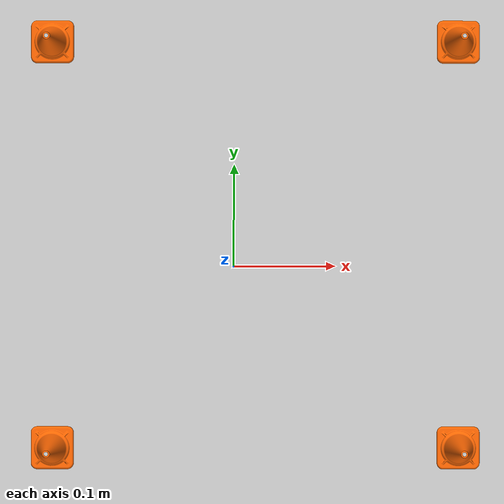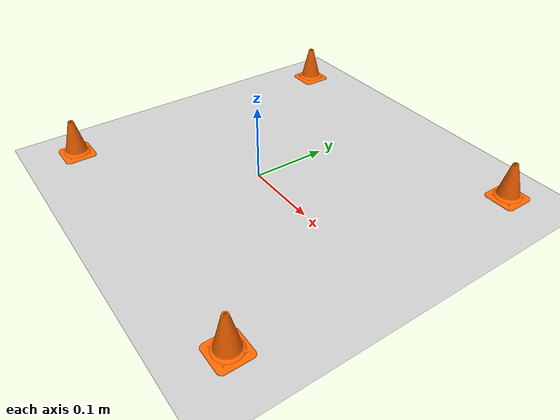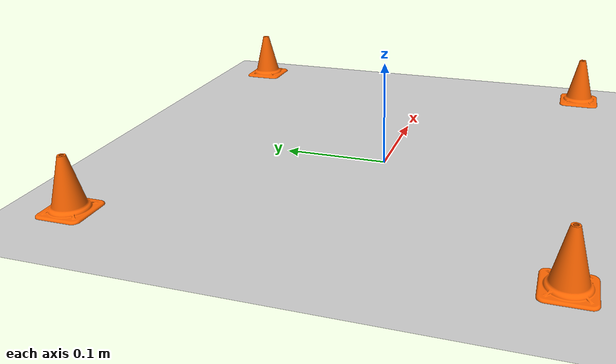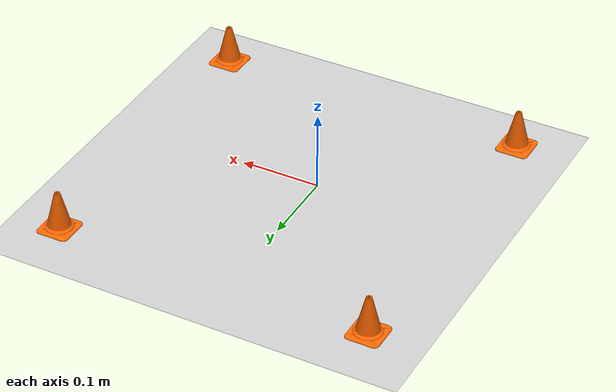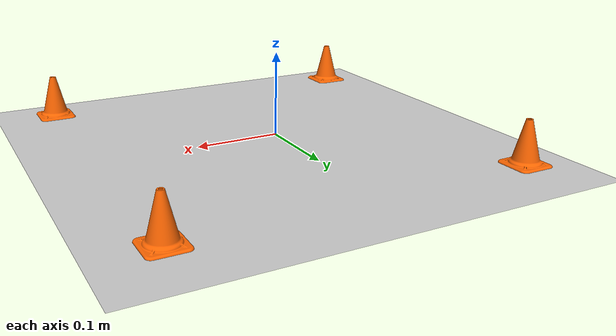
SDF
<sdf version='1.10'>
  <world name='cones'>
    <physics name='1ms' type='ignored'>
      <max_step_size>0.001</max_step_size>
      <real_time_factor>1</real_time_factor>
      <real_time_update_rate>1000</real_time_update_rate>
    </physics>
    <plugin name='gz::sim::systems::Physics' filename='gz-sim-physics-system'/>
    <plugin name='gz::sim::systems::UserCommands' filename='gz-sim-user-commands-system'/>
    <plugin name='gz::sim::systems::SceneBroadcaster' filename='gz-sim-scene-broadcaster-system'/>
    <plugin name='gz::sim::systems::Contact' filename='gz-sim-contact-system'/>
    <gravity>0 0 -9.8000000000000007</gravity>
    <magnetic_field>5.5644999999999998e-06 2.2875799999999999e-05 -4.2388400000000002e-05</magnetic_field>
    <atmosphere type='adiabatic'/>
    <scene>
      <ambient>0.400000006 0.400000006 0.400000006 1</ambient>
      <background>0.699999988 0.699999988 0.699999988 1</background>
      <shadows>true</shadows>
    </scene>
    <model name='ground_plane'>
      <static>true</static>
      <link name='link'>
        <collision name='collision'>
          <geometry>
            <plane>
              <normal>0 0 1</normal>
              <size>100 100</size>
            </plane>
          </geometry>
          <surface>
            <friction><ode/></friction>
            <bounce/>
            <contact/>
          </surface>
        </collision>
        <visual name='visual'>
          <geometry>
            <plane>
              <normal>0 0 1</normal>
              <size>100 100</size>
            </plane>
          </geometry>
          <material>
            <ambient>0.800000012 0.800000012 0.800000012 1</ambient>
            <diffuse>0.800000012 0.800000012 0.800000012 1</diffuse>
            <specular>0.800000012 0.800000012 0.800000012 1</specular>
          </material>
        </visual>
        <pose>0 0 0 0 0 0</pose>
        <inertial>
          <pose>0 0 0 0 0 0</pose>
          <mass>1</mass>
          <inertia>
            <ixx>1</ixx><ixy>0</ixy><ixz>0</ixz>
            <iyy>1</iyy><iyz>0</iyz><izz>1</izz>
          </inertia>
        </inertial>
        <enable_wind>false</enable_wind>
      </link>
      <pose>0 0 0 0 0 0</pose>
      <self_collide>false</self_collide>
    </model>
    <light name='sun' type='directional'>
      <pose>0 0 10 0 0 0</pose>
      <cast_shadows>true</cast_shadows>
      <intensity>1</intensity>
      <direction>-0.5 0.1 -0.9</direction>
      <diffuse>0.800000012 0.800000012 0.800000012 1</diffuse>
      <specular>0.200000003 0.200000003 0.200000003 1</specular>
      <attenuation>
        <range>1000</range>
        <linear>0.01</linear>
        <constant>0.9</constant>
        <quadratic>0.001</quadratic>
      </attenuation>
      <spot>
        <inner_angle>0</inner_angle>
        <outer_angle>0</outer_angle>
        <falloff>0</falloff>
      </spot>
    </light>

    <include>
      <uri>model://traffic_cone</uri>
      <name>cono_1</name>
      <pose>-0.2 -0.2 0 0 0 0</pose>
    </include>
    <include>
      <uri>model://traffic_cone</uri>
      <name>cono_2</name>
      <pose>-0.2  0.2 0 0 0 0</pose>
    </include>
    <include>
      <uri>model://traffic_cone</uri>
      <name>cono_3</name>
      <pose> 0.2 -0.2 0 0 0 0</pose>
    </include>
    <include>
      <uri>model://traffic_cone</uri>
      <name>cono_4</name>
      <pose> 0.2  0.2 0 0 0 0</pose>
    </include>

  </world>
</sdf>

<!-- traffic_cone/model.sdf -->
<sdf version="1.10">
  <model name="traffic_cone">
    <static>false</static>
    <link name="link">
      <pose>0 0 0.006 0 0 0</pose>
      <inertial>
        <mass>0.0072</mass>
        <!-- cono sólido: Ixx=Iyy=(3m/80)*(h²+4r²), Izz=(3/10)*m*r²  h=0.071m r=0.0275m -->
        <inertia>
          <ixx>2.2e-6</ixx>
          <ixy>0</ixy>
          <ixz>0</ixz>
          <iyy>2.2e-6</iyy>
          <iyz>0</iyz>
          <izz>1.6e-6</izz>
        </inertia>
      </inertial>
      <visual name="visual">
        <geometry>
          <mesh>
            <uri>model://traffic_cone/meshes/traffic_cone.stl</uri>
            <scale>0.001 0.001 0.001</scale>
          </mesh>
        </geometry>
        <material>
          <ambient>1.0 0.4 0.0 1</ambient>
          <diffuse>1.0 0.4 0.0 1</diffuse>
          <specular>0.3 0.3 0.3 1</specular>
        </material>
      </visual>
      <collision name="collision">
        <geometry>
          <cylinder>
            <radius>0.02</radius>
            <length>0.065</length>
          </cylinder>
        </geometry>
      </collision>
    </link>
  </model>
</sdf>
